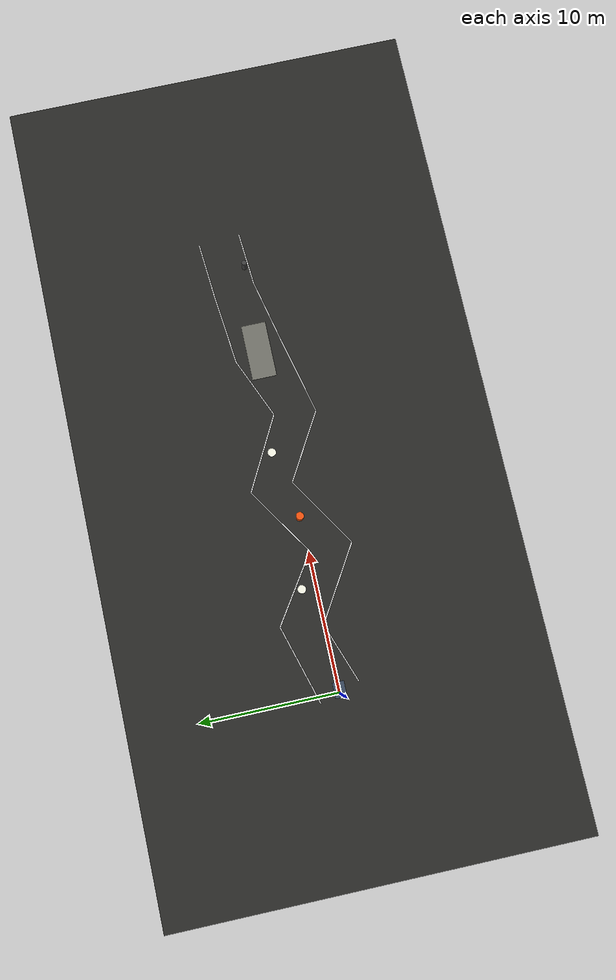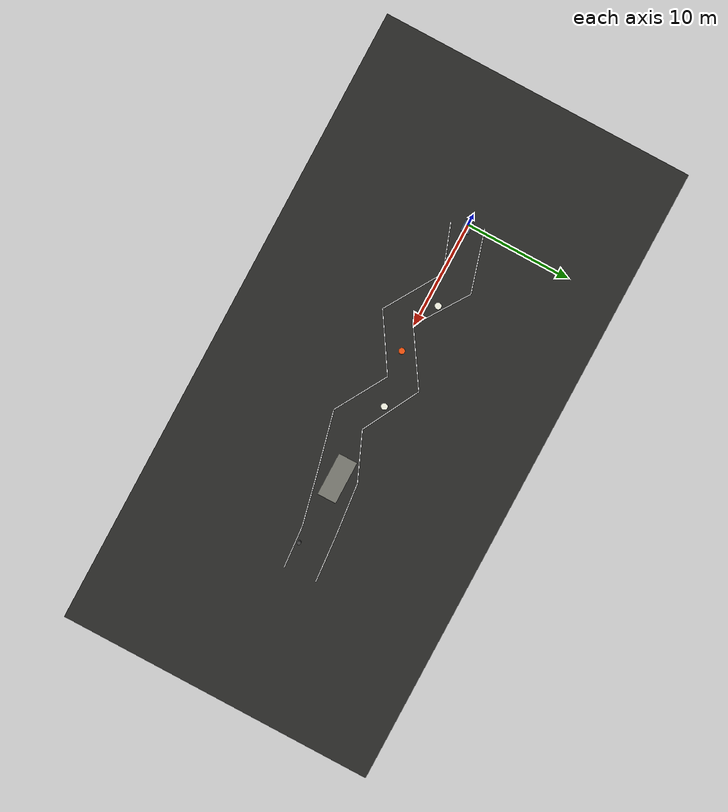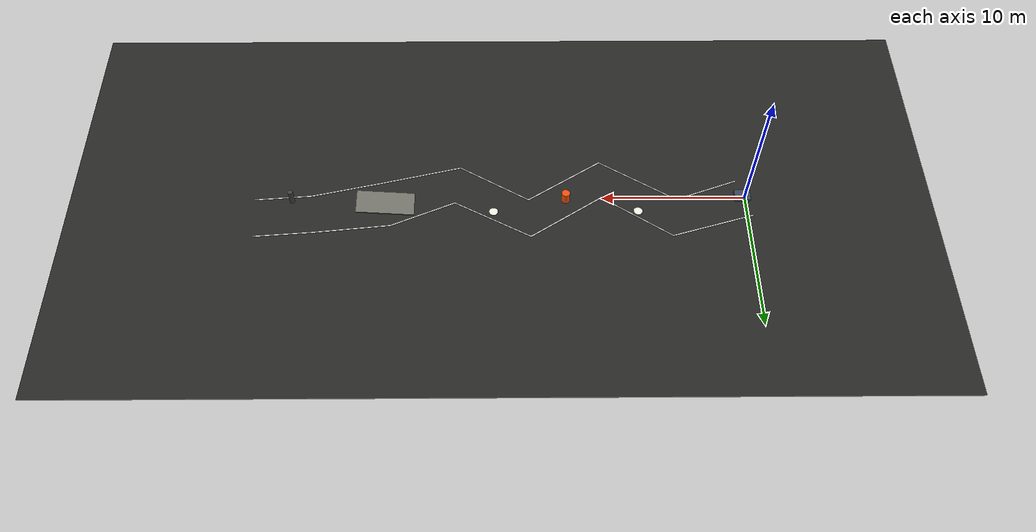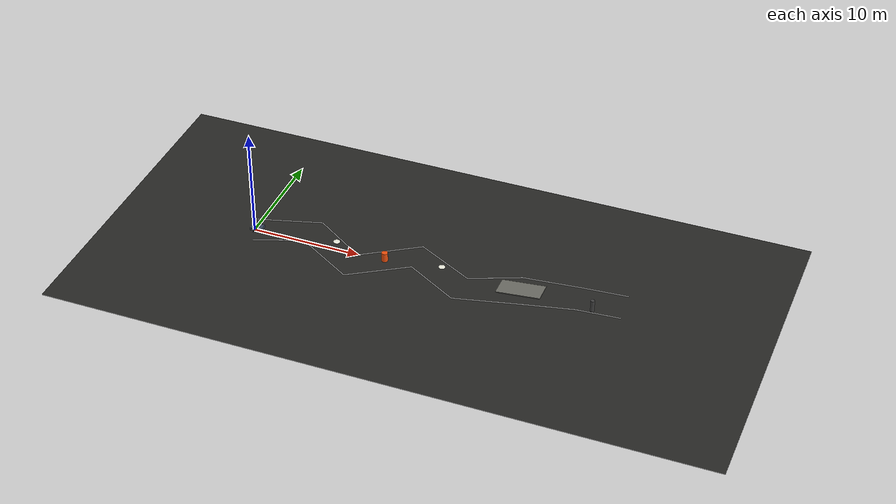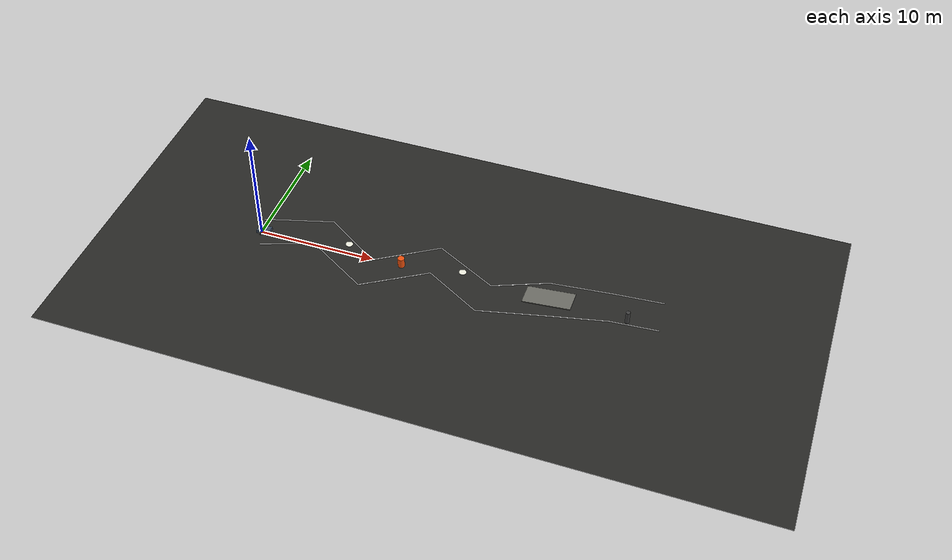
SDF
<?xml version='1.0'?>
<sdf version='1.9'>
  <world name='igvc_competition'>
    <plugin filename='ignition-gazebo-physics-system' name='ignition::gazebo::systems::Physics'/>
    <plugin filename='ignition-gazebo-user-commands-system' name='ignition::gazebo::systems::UserCommands'/>
    <plugin filename='ignition-gazebo-scene-broadcaster-system' name='ignition::gazebo::systems::SceneBroadcaster'/>
    <plugin filename='ignition-gazebo-sensors-system' name='ignition::gazebo::systems::Sensors'>
      <render_engine>ogre2</render_engine>
    </plugin>
    <light name='sun' type='directional'>
      <pose>0 0 20 0 0 0</pose>
      <diffuse>0.8 0.8 0.75 1</diffuse>
      <specular>0.2 0.2 0.2 1</specular>
      <direction>-0.35 0.15 -0.92</direction>
    </light>
    <gravity>0 0 -9.80665</gravity>
    <magnetic_field>6e-06 2.3e-05 -4.2e-05</magnetic_field>
    <atmosphere type='adiabatic'/>
    <physics name='default_physics' type='ode'>
      <max_step_size>0.001</max_step_size>
      <real_time_factor>1.0</real_time_factor>
      <real_time_update_rate>1000</real_time_update_rate>
    </physics>
    <scene>
      <ambient>0.45 0.45 0.45 1</ambient>
      <background>0.70 0.72 0.75 1</background>
      <shadows>true</shadows>
    </scene>
    <spherical_coordinates>
      <surface_model>EARTH_WGS84</surface_model>
      <latitude_deg>37.23027000</latitude_deg>
      <longitude_deg>-80.42504000</longitude_deg>
      <elevation>650.000</elevation>
      <heading_deg>0</heading_deg>
    </spherical_coordinates>

    <model name='asphalt_ground'>
      <static>1</static>
      <pose>17.0000 0.0000 -0.0250 0.000000 0.000000 0.000000</pose>
      <link name='link'>
        <collision name='collision'><geometry><box><size>60.0000 30.0000 0.0500</size></box></geometry></collision>
        <visual name='visual'>
          <geometry><box><size>60.0000 30.0000 0.0500</size></box></geometry>
          <material><ambient>0.16 0.16 0.15 1.0</ambient><diffuse>0.16 0.16 0.15 1.0</diffuse><specular>0.05 0.05 0.05 1</specular></material>
        </visual>
      </link>
    </model>
    <model name='left_boundary_0'>
      <static>1</static>
      <pose>2.3881 2.2782 0.011 0 0 0.282070</pose>
      <link name='link'>
        <visual name='visual'>
          <geometry><box><size>5.9400 0.0762 0.012</size></box></geometry>
          <material><ambient>0.98 0.98 0.98 1</ambient><diffuse>0.98 0.98 0.98 1</diffuse><specular>0.05 0.05 0.05 1</specular><emissive>0.9 0.9 0.9 1</emissive></material>
        </visual>
      </link>
    </model>
    <model name='right_boundary_0'>
      <static>1</static>
      <pose>2.6119 -0.6782 0.011 0 0 0.345664</pose>
      <link name='link'>
        <visual name='visual'>
          <geometry><box><size>4.5647 0.0762 0.012</size></box></geometry>
          <material><ambient>0.98 0.98 0.98 1</ambient><diffuse>0.98 0.98 0.98 1</diffuse><specular>0.05 0.05 0.05 1</specular><emissive>0.9 0.9 0.9 1</emissive></material>
        </visual>
      </link>
    </model>
    <model name='left_boundary_1'>
      <static>1</static>
      <pose>7.6204 1.5144 0.011 0 0 -0.589172</pose>
      <link name='link'>
        <visual name='visual'>
          <geometry><box><size>5.7243 0.0762 0.012</size></box></geometry>
          <material><ambient>0.98 0.98 0.98 1</ambient><diffuse>0.98 0.98 0.98 1</diffuse><specular>0.05 0.05 0.05 1</specular><emissive>0.9 0.9 0.9 1</emissive></material>
        </visual>
      </link>
    </model>
    <model name='right_boundary_1'>
      <static>1</static>
      <pose>7.3796 -1.5144 0.011 0 0 -0.550831</pose>
      <link name='link'>
        <visual name='visual'>
          <geometry><box><size>6.1505 0.0762 0.012</size></box></geometry>
          <material><ambient>0.98 0.98 0.98 1</ambient><diffuse>0.98 0.98 0.98 1</diffuse><specular>0.05 0.05 0.05 1</specular><emissive>0.9 0.9 0.9 1</emissive></material>
        </visual>
      </link>
    </model>
    <model name='left_boundary_2'>
      <static>1</static>
      <pose>12.4695 1.5234 0.011 0 0 0.574719</pose>
      <link name='link'>
        <visual name='visual'>
          <geometry><box><size>5.8845 0.0762 0.012</size></box></geometry>
          <material><ambient>0.98 0.98 0.98 1</ambient><diffuse>0.98 0.98 0.98 1</diffuse><specular>0.05 0.05 0.05 1</specular><emissive>0.9 0.9 0.9 1</emissive></material>
        </visual>
      </link>
    </model>
    <model name='right_boundary_2'>
      <static>1</static>
      <pose>12.5305 -1.5234 0.011 0 0 0.564001</pose>
      <link name='link'>
        <visual name='visual'>
          <geometry><box><size>5.9884 0.0762 0.012</size></box></geometry>
          <material><ambient>0.98 0.98 0.98 1</ambient><diffuse>0.98 0.98 0.98 1</diffuse><specular>0.05 0.05 0.05 1</specular><emissive>0.9 0.9 0.9 1</emissive></material>
        </visual>
      </link>
    </model>
    <model name='left_boundary_3'>
      <static>1</static>
      <pose>17.5603 1.7180 0.011 0 0 -0.491981</pose>
      <link name='link'>
        <visual name='visual'>
          <geometry><box><size>5.9479 0.0762 0.012</size></box></geometry>
          <material><ambient>0.98 0.98 0.98 1</ambient><diffuse>0.98 0.98 0.98 1</diffuse><specular>0.05 0.05 0.05 1</specular><emissive>0.9 0.9 0.9 1</emissive></material>
        </visual>
      </link>
    </model>
    <model name='right_boundary_3'>
      <static>1</static>
      <pose>17.4397 -1.3180 0.011 0 0 -0.530447</pose>
      <link name='link'>
        <visual name='visual'>
          <geometry><box><size>5.5154 0.0762 0.012</size></box></geometry>
          <material><ambient>0.98 0.98 0.98 1</ambient><diffuse>0.98 0.98 0.98 1</diffuse><specular>0.05 0.05 0.05 1</specular><emissive>0.9 0.9 0.9 1</emissive></material>
        </visual>
      </link>
    </model>
    <model name='left_boundary_4'>
      <static>1</static>
      <pose>22.3774 1.2457 0.011 0 0 0.401623</pose>
      <link name='link'>
        <visual name='visual'>
          <geometry><box><size>4.7713 0.0762 0.012</size></box></geometry>
          <material><ambient>0.98 0.98 0.98 1</ambient><diffuse>0.98 0.98 0.98 1</diffuse><specular>0.05 0.05 0.05 1</specular><emissive>0.9 0.9 0.9 1</emissive></material>
        </visual>
      </link>
    </model>
    <model name='right_boundary_4'>
      <static>1</static>
      <pose>22.6226 -2.0457 0.011 0 0 0.233662</pose>
      <link name='link'>
        <visual name='visual'>
          <geometry><box><size>5.7650 0.0762 0.012</size></box></geometry>
          <material><ambient>0.98 0.98 0.98 1</ambient><diffuse>0.98 0.98 0.98 1</diffuse><specular>0.05 0.05 0.05 1</specular><emissive>0.9 0.9 0.9 1</emissive></material>
        </visual>
      </link>
    </model>
    <model name='left_boundary_5'>
      <static>1</static>
      <pose>27.1942 2.4455 0.011 0 0 0.101604</pose>
      <link name='link'>
        <visual name='visual'>
          <geometry><box><size>5.2691 0.0762 0.012</size></box></geometry>
          <material><ambient>0.98 0.98 0.98 1</ambient><diffuse>0.98 0.98 0.98 1</diffuse><specular>0.05 0.05 0.05 1</specular><emissive>0.9 0.9 0.9 1</emissive></material>
        </visual>
      </link>
    </model>
    <model name='right_boundary_5'>
      <static>1</static>
      <pose>27.8058 -0.8455 0.011 0 0 0.220311</pose>
      <link name='link'>
        <visual name='visual'>
          <geometry><box><size>4.8760 0.0762 0.012</size></box></geometry>
          <material><ambient>0.98 0.98 0.98 1</ambient><diffuse>0.98 0.98 0.98 1</diffuse><specular>0.05 0.05 0.05 1</specular><emissive>0.9 0.9 0.9 1</emissive></material>
        </visual>
      </link>
    </model>
    <model name='left_boundary_6'>
      <static>1</static>
      <pose>31.8506 2.8662 0.011 0 0 0.075268</pose>
      <link name='link'>
        <visual name='visual'>
          <geometry><box><size>4.0825 0.0762 0.012</size></box></geometry>
          <material><ambient>0.98 0.98 0.98 1</ambient><diffuse>0.98 0.98 0.98 1</diffuse><specular>0.05 0.05 0.05 1</specular><emissive>0.9 0.9 0.9 1</emissive></material>
        </visual>
      </link>
    </model>
    <model name='right_boundary_6'>
      <static>1</static>
      <pose>32.1494 -0.1662 0.011 0 0 0.074437</pose>
      <link name='link'>
        <visual name='visual'>
          <geometry><box><size>3.9400 0.0762 0.012</size></box></geometry>
          <material><ambient>0.98 0.98 0.98 1</ambient><diffuse>0.98 0.98 0.98 1</diffuse><specular>0.05 0.05 0.05 1</specular><emissive>0.9 0.9 0.9 1</emissive></material>
        </visual>
      </link>
    </model>
    <model name='turn_apex_barrel'>
      <static>1</static>
      <pose>12.5000 0.1000 0 0 0 0</pose>
      <link name='link'>
        <collision name='collision'><pose>0 0 0.4250 0 0 0</pose><geometry><cylinder><radius>0.2800</radius><length>0.8500</length></cylinder></geometry></collision>
        <visual name='visual'>
          <pose>0 0 0.4250 0 0 0</pose>
          <geometry><cylinder><radius>0.2800</radius><length>0.8500</length></cylinder></geometry>
          <material><ambient>0.95 0.32 0.05 1.0</ambient><diffuse>0.95 0.32 0.05 1.0</diffuse><specular>0.05 0.05 0.05 1</specular></material>
        </visual>
      </link>
    </model>
    <model name='exit_post'>
      <static>1</static>
      <pose>31.5000 0.1000 0 0 0 0</pose>
      <link name='link'>
        <collision name='collision'><pose>0 0 0.5500 0 0 0</pose><geometry><cylinder><radius>0.1800</radius><length>1.1000</length></cylinder></geometry></collision>
        <visual name='visual'>
          <pose>0 0 0.5500 0 0 0</pose>
          <geometry><cylinder><radius>0.1800</radius><length>1.1000</length></cylinder></geometry>
          <material><ambient>0.25 0.25 0.25 1.0</ambient><diffuse>0.25 0.25 0.25 1.0</diffuse><specular>0.05 0.05 0.05 1</specular></material>
        </visual>
      </link>
    </model>
    <model name='pothole_near_left'>
      <static>1</static>
      <pose>7.5000 1.0500 0 0 0 0</pose>
      <link name='link'>

        <visual name='visual'>
          <pose>0 0 0.0060 0 0 0</pose>
          <geometry><cylinder><radius>0.3048</radius><length>0.0120</length></cylinder></geometry>
          <material><ambient>0.96 0.96 0.9 1.0</ambient><diffuse>0.96 0.96 0.9 1.0</diffuse><specular>0.05 0.05 0.05 1</specular></material>
        </visual>
      </link>
    </model>
    <model name='pothole_near_right'>
      <static>1</static>
      <pose>17.5000 1.0500 0 0 0 0</pose>
      <link name='link'>

        <visual name='visual'>
          <pose>0 0 0.0060 0 0 0</pose>
          <geometry><cylinder><radius>0.3048</radius><length>0.0120</length></cylinder></geometry>
          <material><ambient>0.96 0.96 0.9 1.0</ambient><diffuse>0.96 0.96 0.9 1.0</diffuse><specular>0.05 0.05 0.05 1</specular></material>
        </visual>
      </link>
    </model>
    <model name='legal_grade_ramp'>
      <static>1</static>
      <pose>25.0000 0.4000 0.2000 0.000000 -0.099669 0.000000</pose>
      <link name='link'>
        <collision name='collision'><geometry><box><size>4.0200 1.8000 0.0800</size></box></geometry></collision>
        <visual name='visual'>
          <geometry><box><size>4.0200 1.8000 0.0800</size></box></geometry>
          <material><ambient>0.45 0.45 0.42 1.0</ambient><diffuse>0.45 0.45 0.42 1.0</diffuse><specular>0.05 0.05 0.05 1</specular></material>
        </visual>
      </link>
    </model>
    <model name='shogi'>
      <pose>0.0000 0.0000 0.1295 0 0 0.000000</pose>
      <link name='base_link'>
        <inertial>
          <mass>90.0</mass>
          <inertia>
            <ixx>4.0</ixx><iyy>8.0</iyy><izz>9.0</izz>
            <ixy>0</ixy><ixz>0</ixz><iyz>0</iyz>
          </inertia>
        </inertial>
        <collision name='body_collision'>
          <pose>0.2250 0 0.1800 0 0 0</pose>
          <geometry><box><size>1.0900 0.8200 0.2600</size></box></geometry>
        </collision>
        <visual name='body_visual'>
          <pose>0.2250 0 0.1800 0 0 0</pose>
          <geometry><box><size>1.0900 0.8200 0.2600</size></box></geometry>
          <material><ambient>0.22 0.28 0.36 1.0</ambient><diffuse>0.22 0.28 0.36 1.0</diffuse><specular>0.05 0.05 0.05 1</specular></material>
        </visual>
        <sensor name='zed2i_rgbd' type='rgbd_camera'>
          <pose>0.657600 0.009075 0.307230 0 0.349070 0</pose>
          <always_on>1</always_on>
          <update_rate>15</update_rate>
          <visualize>false</visualize>
          <topic>/igvc_sim/zed</topic>
          <camera>
            <horizontal_fov>1.918862</horizontal_fov>
            <image>
              <width>960</width>
              <height>540</height>
              <format>R8G8B8</format>
            </image>
            <clip>
              <near>0.10</near>
              <far>15.0</far>
            </clip>
          </camera>
        </sensor>
      </link>
      <link name='left_wheel_link'>
        <pose>0 0.36163 0 1.570796 0 0</pose>
        <inertial><mass>3.0</mass><inertia><ixx>0.05</ixx><iyy>0.05</iyy><izz>0.05</izz><ixy>0</ixy><ixz>0</ixz><iyz>0</iyz></inertia></inertial>
        <collision name='collision'><geometry><cylinder><radius>0.12946</radius><length>0.1000</length></cylinder></geometry></collision>
        <visual name='visual'><geometry><cylinder><radius>0.12946</radius><length>0.1000</length></cylinder></geometry><material><ambient>0.03 0.03 0.03 1.0</ambient><diffuse>0.03 0.03 0.03 1.0</diffuse><specular>0.05 0.05 0.05 1</specular></material></visual>
      </link>
      <link name='right_wheel_link'>
        <pose>0 -0.36163 0 1.570796 0 0</pose>
        <inertial><mass>3.0</mass><inertia><ixx>0.05</ixx><iyy>0.05</iyy><izz>0.05</izz><ixy>0</ixy><ixz>0</ixz><iyz>0</iyz></inertia></inertial>
        <collision name='collision'><geometry><cylinder><radius>0.12946</radius><length>0.1000</length></cylinder></geometry></collision>
        <visual name='visual'><geometry><cylinder><radius>0.12946</radius><length>0.1000</length></cylinder></geometry><material><ambient>0.03 0.03 0.03 1.0</ambient><diffuse>0.03 0.03 0.03 1.0</diffuse><specular>0.05 0.05 0.05 1</specular></material></visual>
      </link>
      <joint name='Left_Wheel' type='revolute'>
        <parent>base_link</parent>
        <child>left_wheel_link</child>
        <axis><xyz>0 1 0</xyz><limit><lower>-1e16</lower><upper>1e16</upper></limit></axis>
      </joint>
      <joint name='Right_Wheel' type='revolute'>
        <parent>base_link</parent>
        <child>right_wheel_link</child>
        <axis><xyz>0 1 0</xyz><limit><lower>-1e16</lower><upper>1e16</upper></limit></axis>
      </joint>
      <plugin filename='ignition-gazebo-diff-drive-system' name='ignition::gazebo::systems::DiffDrive'>
        <left_joint>Left_Wheel</left_joint>
        <right_joint>Right_Wheel</right_joint>
        <wheel_separation>0.72326</wheel_separation>
        <wheel_radius>0.12946</wheel_radius>
        <topic>/cmd_vel_gazebo</topic>
        <odom_topic>/model/shogi/odometry</odom_topic>
        <tf_topic>/model/shogi/tf</tf_topic>
        <frame_id>odom</frame_id>
        <child_frame_id>base_link</child_frame_id>
        <odom_publish_frequency>50</odom_publish_frequency>
        <max_linear_acceleration>1.0</max_linear_acceleration>
        <max_angular_acceleration>2.0</max_angular_acceleration>
      </plugin>
    </model>
  </world>
</sdf>
